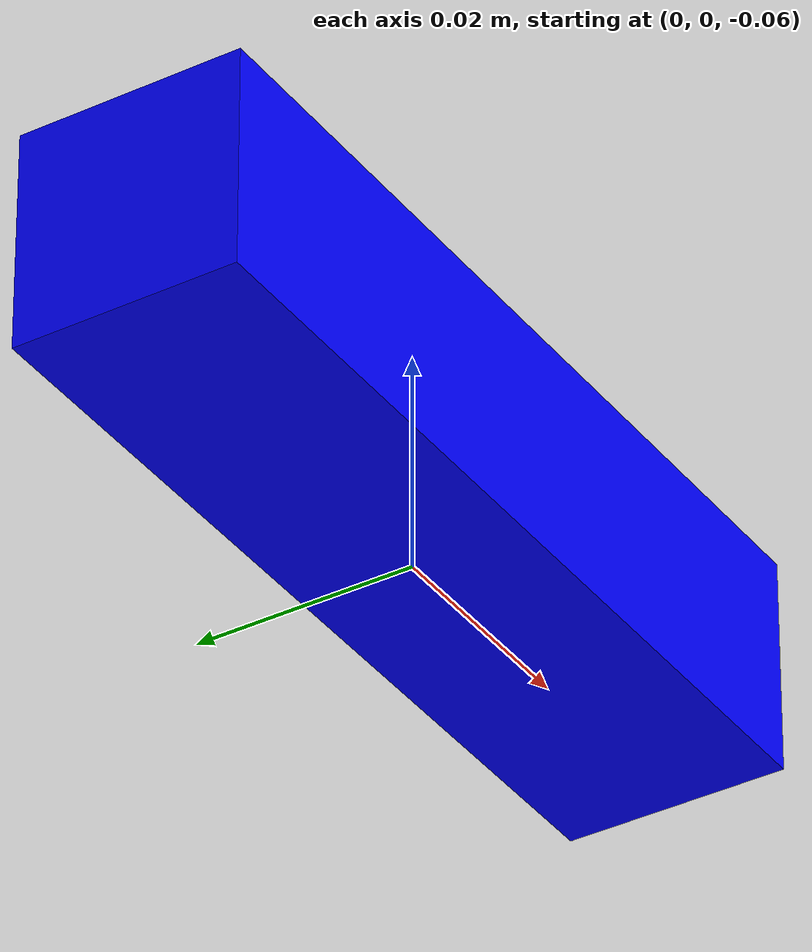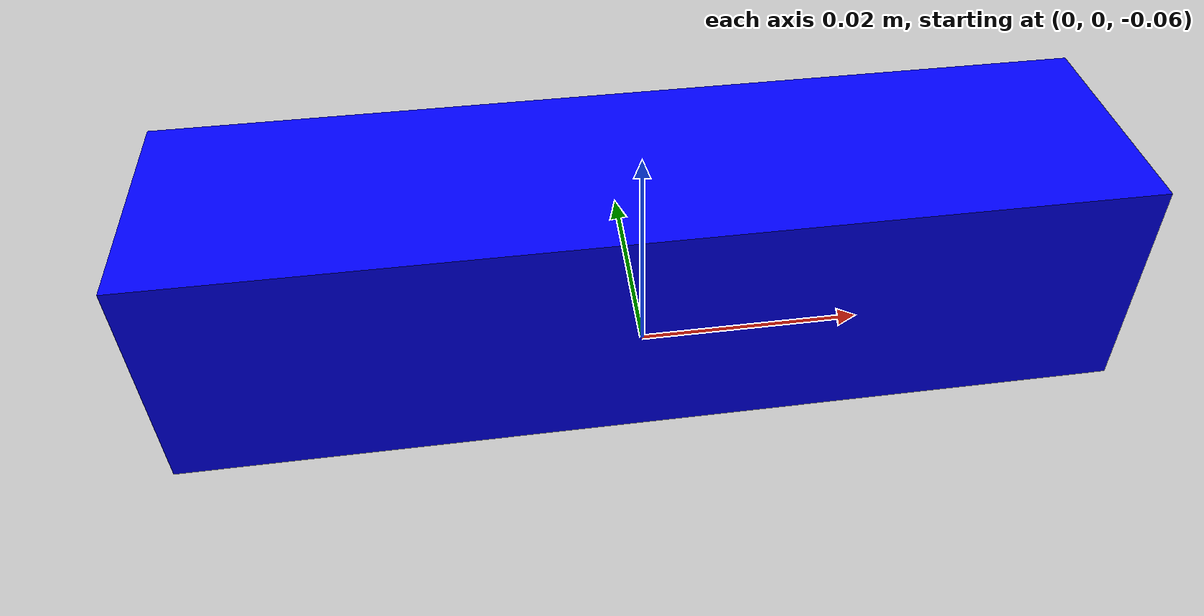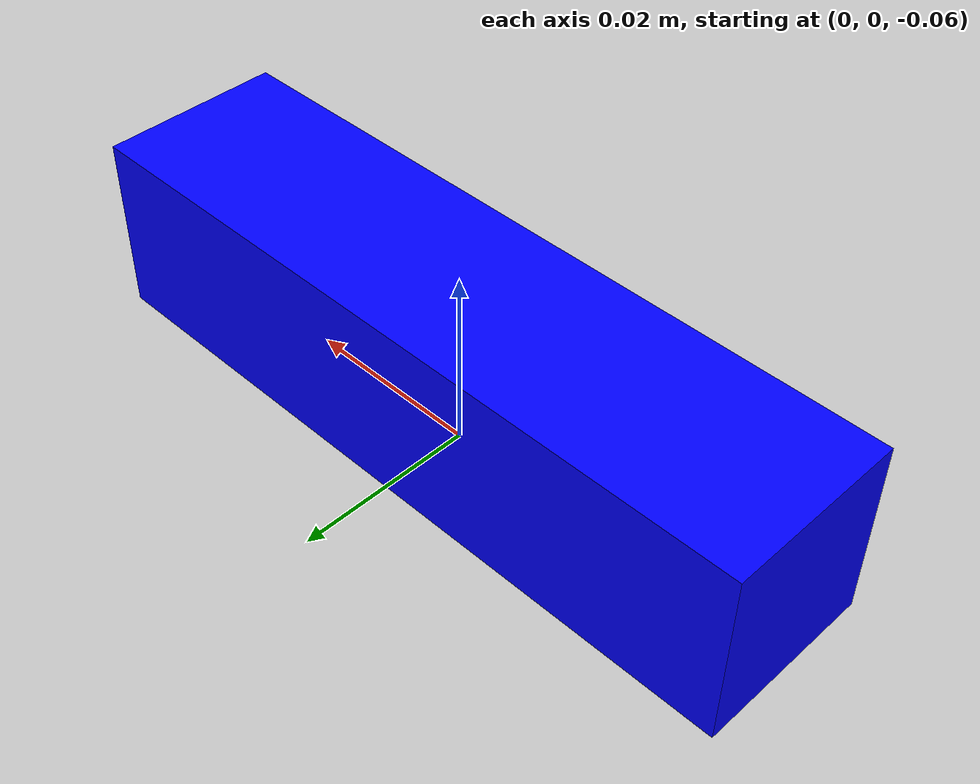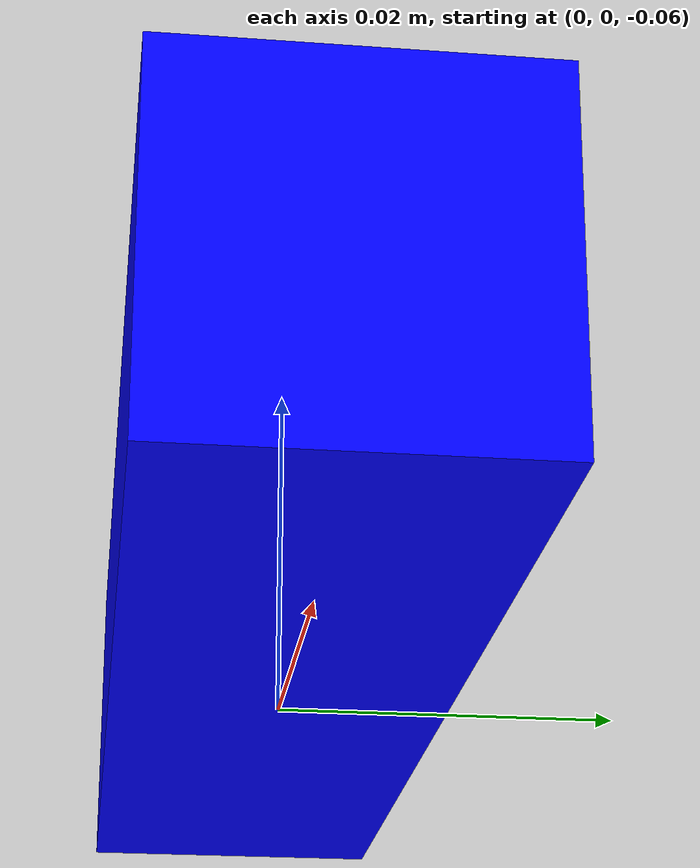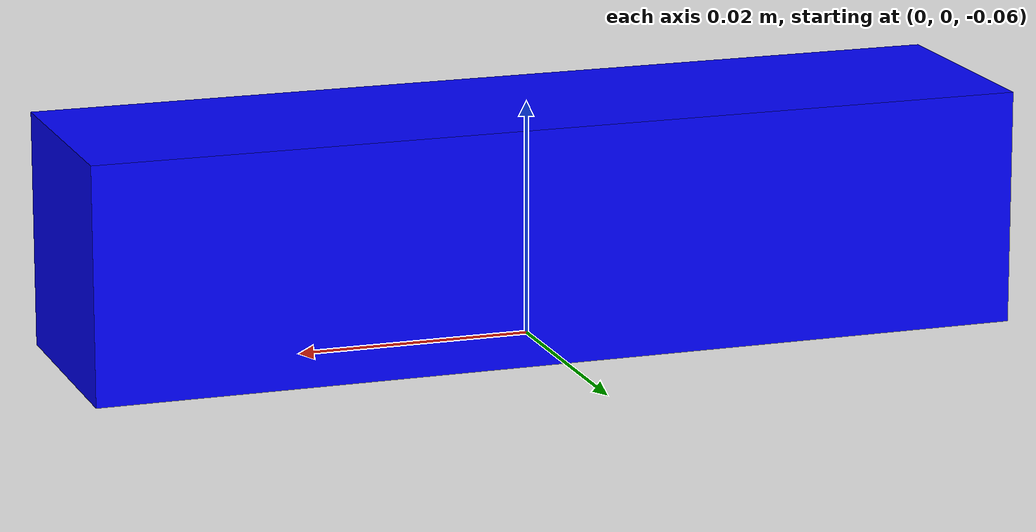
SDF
<?xml version="1.0"?>
<sdf version="1.9">
  <model name="payload_blue">
    <link name="payload_base_link">
      <pose degrees="true">0 0 -0.05 0 0 0</pose>
      <inertial>
        <mass>0.4</mass>
        <inertia>
          <ixx>0.0001</ixx>
          <iyy>0.0001</iyy>
          <izz>0.0001</izz>
        </inertia>
      </inertial>

      <collision name="collision">
        <geometry>
          <box>
            <size>0.08 0.02 0.02</size>
          </box>
        </geometry>
        <surface>
          <friction>
            <ode>
              <mu>0.3</mu>
              <mu2>0.3</mu2>
            </ode>
          </friction>
          <contact>
            <ode>
              <max_vel>0.0</max_vel>
              <min_depth>0.001</min_depth>
            </ode>
          </contact>
        </surface>
      </collision>

      <visual name="visual">
        <geometry>
          <box>
            <size>0.08 0.02 0.02</size>
          </box>
        </geometry>
        <material>
          <ambient>0 0 1 1</ambient>
          <diffuse>0 0 1 1</diffuse>
          <specular>0.1 0.1 0.1 1</specular>
        </material>
      </visual>
    </link>
  </model>
</sdf>
